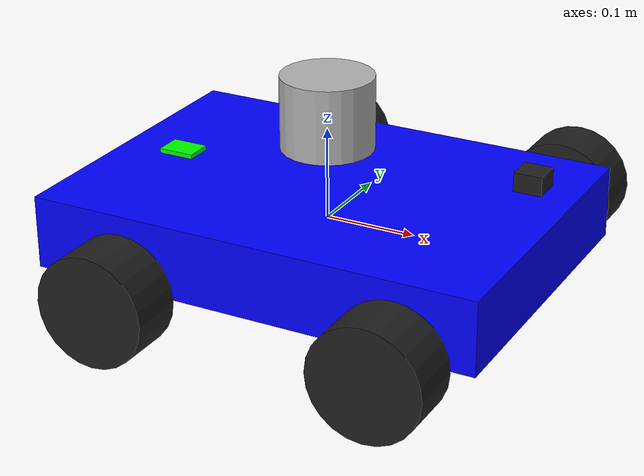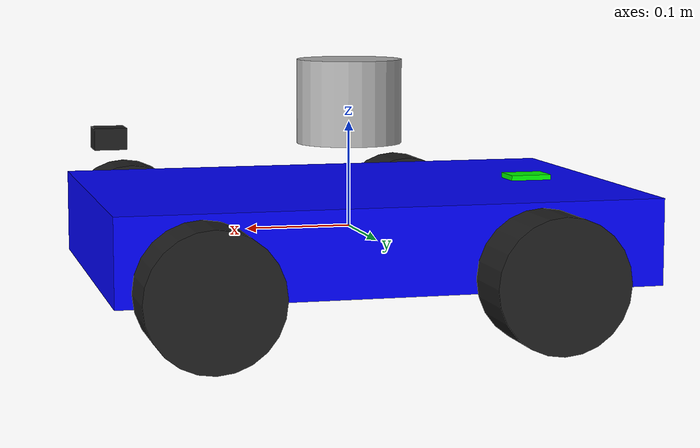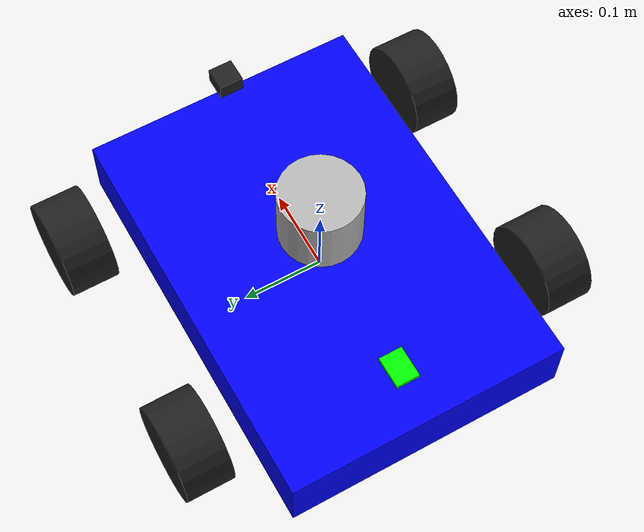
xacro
<?xml version="1.0"?>
<robot name="racecar" xmlns:xacro="http://www.ros.org/wiki/xacro">

  <!-- 拼接传感器定义-->
  <xacro:include filename="sensors.xacro"/>

  <!--  底盘质量  -->
  <xacro:property name="base_mass" value="2.0" />
  <!--  底盘惯性  -->
  <xacro:property name="base_inertia_ixx" value="0.05" />
  <xacro:property name="base_inertia_iyy" value="0.05" />
  <xacro:property name="base_inertia_izz" value="0.02" />
  <!--  车身尺寸  -->
  <xacro:property name="chassis_length" value="0.5" />
  <xacro:property name="chassis_width" value="0.35" />
  <xacro:property name="chassis_height" value="0.08" />

  <!-- 轮子半径 -->
  <xacro:property name="wheel_radius" value="0.06" />
  <!-- 轮子长度 -->
  <xacro:property name="wheel_length" value="0.06" />
  <!-- 轮子质量 -->
  <xacro:property name="wheel_mass" value="0.1" />
  <!-- 轮子间距 -->
  <xacro:property name="wheel_separation" value="0.48" />
  <!-- 轴距 -->
  <xacro:property name="wheelbase" value="0.30" />

  <!-- 轮轴位置 -->
  <xacro:property name="rear_axle_x" value="-0.12" />
  <xacro:property name="front_axle_x" value="0.18" />

  <!-- 底盘 link -->
  <link name="base_link">
    <!-- 物理属性 -->
    <inertial>
      <mass value="${base_mass}" />
      <inertia ixx="${base_inertia_ixx}" ixy="0" ixz="0"
               iyy="${base_inertia_iyy}" iyz="0"
               izz="${base_inertia_izz}" />
    </inertial>
    <!-- 车子外观 -->
    <visual>
      <geometry>
        <box size="${chassis_length} ${chassis_width} ${chassis_height}" />
      </geometry>
      <material name="blue">
        <color rgba="0 0 1 1" />
      </material>
    </visual>
    <!-- 车子碰撞体 -->
    <collision>
      <geometry>
        <box size="${chassis_length} ${chassis_width} ${chassis_height}" />
      </geometry>
    </collision>
  </link>

  <!-- 车轮宏,用来批量创建轮子（prefix车轮名字，x y轮子位置） -->
  <xacro:macro name="wheel_link" params="prefix x y">
    <link name="${prefix}_wheel_link">
      <inertial>
        <mass value="${wheel_mass}"/>
        <inertia ixx="0.001" ixy="0" ixz="0" iyy="0.001" iyz="0" izz="0.001"/>
      </inertial>
      <visual>
        <geometry>
          <cylinder length="${wheel_length}" radius="${wheel_radius}"/>
        </geometry>
        <material name="black"/>
      </visual>
      <collision>
        <geometry>
          <cylinder length="${wheel_length}" radius="${wheel_radius}"/>
        </geometry>
      </collision>
    </link>
  </xacro:macro>

  <!-- 后轮（驱动轮）-->
  <xacro:wheel_link prefix="left_rear" x="${rear_axle_x}" y="${wheel_separation/2}"/>
  <xacro:wheel_link prefix="right_rear" x="${rear_axle_x}" y="${-wheel_separation/2}"/>

  <!-- 后轮关节 -->
  <joint name="left_rear_wheel_joint" type="continuous">
    <origin xyz="${rear_axle_x} ${wheel_separation/2} -0.02" rpy="-1.5708 0 0"/>
    <parent link="base_link"/>
    <child link="left_rear_wheel_link"/>
    <!-- 轮子绕z轴旋转（joint坐标系z轴平行于地面）-->
    <axis xyz="0 0 1"/>
  </joint>
  <joint name="right_rear_wheel_joint" type="continuous">
    <origin xyz="${rear_axle_x} ${-wheel_separation/2} -0.02" rpy="-1.5708 0 0"/>
    <parent link="base_link"/>
    <child link="right_rear_wheel_link"/>
    <axis xyz="0 0 1"/>
  </joint>

  <!-- 前轮（转向轮） -->
  <xacro:wheel_link prefix="left_front" x="${front_axle_x}" y="${wheel_separation/2}"/>
  <xacro:wheel_link prefix="right_front" x="${front_axle_x}" y="${-wheel_separation/2}"/>

  <!-- 左前转向节 link -->
  <link name="left_front_steer_link">
    <inertial>
      <mass value="0.05" />
      <inertia ixx="0.0001" ixy="0" ixz="0" iyy="0.0001" iyz="0" izz="0.0001" />
    </inertial>
    <visual>
      <geometry>
       <box size="0.02 0.02 0.04" />
      </geometry>
      <material name="grey">
        <color rgba="0.5 0.5 0.5 1" />
      </material>
    </visual>
    <collision>
      <geometry>
        <box size="0.02 0.02 0.04" />
      </geometry>
    </collision>
  </link>

  <!-- 转向架关节-->
  <joint name="left_front_steer_joint" type="revolute">
    <parent link="base_link"/>
    <child link="left_front_steer_link"/>
    <origin xyz="${front_axle_x} ${wheel_separation/2} 0" rpy="0 0 0"/>
    <axis xyz="0 0 1"/>
    <!-- 转向角限制 -->
    <limit lower="-0.6" upper="0.6" effort="0.5" velocity="1.0"/>
  </joint>

  <!-- 左前轮关节（安装在转向节上） -->
  <joint name="left_front_wheel_joint" type="continuous">
    <parent link="left_front_steer_link"/>
    <child link="left_front_wheel_link"/>
    <origin xyz="0 0 -0.02" rpy="-1.5708 0 0"/>
    <axis xyz="0 0 1"/>
  </joint>

  <link name="right_front_steer_link">
    <inertial>
      <mass value="0.05" />
      <inertia ixx="0.0001" ixy="0" ixz="0" iyy="0.0001" iyz="0" izz="0.0001" />
    </inertial>
    <visual>
      <geometry><box size="0.02 0.02 0.04" /></geometry>
      <material name="grey"><color rgba="0.5 0.5 0.5 1" /></material>
    </visual>
    <collision>
      <geometry><box size="0.02 0.02 0.04" /></geometry>
    </collision>
  </link>

  <joint name="right_front_steer_joint" type="revolute">
    <parent link="base_link"/>
    <child link="right_front_steer_link"/>
    <origin xyz="${front_axle_x} ${-wheel_separation/2} 0" rpy="0 0 0"/>
    <axis xyz="0 0 1"/>
    <limit lower="-0.6" upper="0.6" effort="0.5" velocity="1.0"/>
  </joint>

  <!-- 右前轮（安装在转向节上） -->
  <joint name="right_front_wheel_joint" type="continuous">
    <parent link="right_front_steer_link"/>
    <child link="right_front_wheel_link"/>
    <origin xyz="0 0 -0.02" rpy="-1.5708 0 0"/>
    <axis xyz="0 0 1"/>
  </joint>

  <!-- 传感器  -->
  <xacro:velodyne_vlp16 parent="base_link">
    <origin xyz="0 0 0.12" rpy="0 0 0" />
  </xacro:velodyne_vlp16>
  <xacro:usb_camera parent="base_link">
    <origin xyz="0.23 0 0.09" rpy="0 0 0" />
  </xacro:usb_camera>
  <xacro:imu_sensor parent="base_link">
    <origin xyz="0 0 0.02" rpy="0 0 0" />
  </xacro:imu_sensor>
  <xacro:gps_sensor parent="base_link">
    <origin xyz="-0.18 0 0.04" rpy="0 0 0" />
  </xacro:gps_sensor>
  <xacro:magnetometer parent="base_link">
    <origin xyz="0.15 0.1 0.02" rpy="0 0 0" />
  </xacro:magnetometer>

  <!--  Gazebo 阿克曼转向插件 -->
  <gazebo>
    <plugin filename="gz-sim-ackermann-steering-system" name="gz::sim::systems::AckermannSteering">
      <left_joint>left_rear_wheel_joint</left_joint>
      <right_joint>right_rear_wheel_joint</right_joint>
      <left_steering_joint>left_front_steer_joint</left_steering_joint>
      <right_steering_joint>right_front_steer_joint</right_steering_joint>
      <wheel_base>${wheelbase}</wheel_base>
      <wheel_separation>${wheel_separation}</wheel_separation>
      <wheel_radius>${wheel_radius}</wheel_radius>
      <steering_limit>0.6</steering_limit>
      <max_velocity>3.0</max_velocity>
      <min_velocity>-3.0</min_velocity>
    </plugin>
  </gazebo>

  <!-- gazebo 关节状态发布插件 -->
  <gazebo>
    <plugin filename="gz-sim-joint-state-publisher-system"
          name="gz::sim::systems::JointStatePublisher">
    </plugin>
  </gazebo>

</robot>

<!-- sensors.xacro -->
<robot xmlns:xacro="http://www.ros.org/wiki/xacro">

  <!--  激光雷达的刚体  -->
  <xacro:macro name="velodyne_vlp16" params="parent *origin">
    <link name="velodyne_link">
      <inertial>
        <mass value="0.5" />
        <!--link都需要定义惯性张量，不然gazebo无法计算-->
        <inertia ixx="0.001" ixy="0" ixz="0" iyy="0.001" iyz="0" izz="0.001" />
      </inertial>
      <visual>
        <geometry>
          <cylinder radius="0.05" length="0.08" />
        </geometry>
        <material name="silver">
          <color rgba="0.7 0.7 0.7 1" />
        </material>
      </visual>
      <!-- 无碰撞盒：传感器 link 不需要碰撞，避免雷达扫到自身 -->
    </link>

    <joint name="velodyne_joint" type="fixed">
      <xacro:insert_block name="origin" />
      <parent link="${parent}" />
      <child link="velodyne_link" />
    </joint>

    <!--  Gazebo 激光雷达插件 -->
    <gazebo reference="velodyne_link">
      <sensor name="laser" type="gpu_lidar">
        <!--话题名字-->
        <topic>scan</topic>
        <update_rate>20</update_rate>
        <lidar>
          <scan>
            <!--水平扫描-->
            <horizontal>
              <!--一圈采样360个点-->
              <samples>360</samples>
              <resolution>1</resolution>
              <min_angle>-3.14159</min_angle>
              <max_angle>3.14159</max_angle>
            </horizontal>
            <!-- 垂直扫描 -->
            <vertical>
              <samples>16</samples>
              <resolution>1</resolution>
              <min_angle>-0.2618</min_angle>
              <max_angle>0.2618</max_angle>
            </vertical>
          </scan>
          <!-- 激光雷达测距范围 -->
          <range>
            <min>0.1</min>
            <max>30.0</max>
            <resolution>0.01</resolution>
          </range>
        </lidar>
        <always_on>1</always_on>
        <visualize>true</visualize>
      </sensor>
    </gazebo>
  </xacro:macro>

  <!-- USB 相机 -->
  <xacro:macro name="usb_camera" params="parent *origin">
    <!-- 相机刚体 -->
    <link name="camera_link">
      <inertial>
        <mass value="0.05" />
        <inertia ixx="0.0001" ixy="0" ixz="0" iyy="0.0001" iyz="0" izz="0.0001" />
      </inertial>
      <visual>
        <geometry>
          <box size="0.03 0.03 0.02" />
        </geometry>
        <material name="black" />
      </visual>
    </link>

    <joint name="camera_joint" type="fixed">
      <xacro:insert_block name="origin" />
      <parent link="${parent}" />
      <child link="camera_link" />
    </joint>
    <!-- Gazebo 相机插件 -->
    <gazebo reference="camera_link">
      <sensor name="camera" type="camera">
        <topic>camera/image_raw</topic>
        <update_rate>30</update_rate>
        <camera>
          <!-- 相机视角范围 -->
          <horizontal_fov>1.0472</horizontal_fov>
          <image>
            <width>640</width>
            <height>480</height>
            <format>R8G8B8</format>
          </image>
          <!-- 相机距离范围 -->
          <clip>
            <near>0.05</near>
            <far>100</far>
          </clip>
        </camera>
        <always_on>1</always_on>
        <visualize>true</visualize>
      </sensor>
    </gazebo>
  </xacro:macro>

  <!-- IMU  -->
    <xacro:macro name="imu_sensor" params="parent *origin">
    <link name="imu_link">
      <inertial>
        <mass value="0.02" />
        <inertia ixx="0.00001" ixy="0" ixz="0" iyy="0.00001" iyz="0" izz="0.00001" />
      </inertial>
      <visual>
        <geometry>
          <box size="0.02 0.02 0.01" />
        </geometry>
        <material name="red">
          <color rgba="1 0 0 1" />
        </material>
      </visual>
    </link>

    <joint name="imu_joint" type="fixed">
      <xacro:insert_block name="origin" />
      <parent link="${parent}" />
      <child link="imu_link" />
    </joint>

    <gazebo reference="imu_link">
      <sensor name="imu" type="imu">
        <topic>imu/data_raw</topic>
        <update_rate>100</update_rate>
        <always_on>1</always_on>
        <visualize>true</visualize>
        <imu>
          <angular_velocity>
            <x>
              <noise type="gaussian">
                <mean>0.0</mean>
                <stddev>0.2</stddev>
              </noise>
            </x>
            <y>
              <noise type="gaussian">
                <mean>0.0</mean>
                <stddev>0.2</stddev>
              </noise>
            </y>
            <z>
              <noise type="gaussian">
                <mean>0.0</mean>
                <stddev>0.2</stddev>
              </noise>
            </z>
          </angular_velocity>
          <linear_acceleration>
            <x>
              <noise type="gaussian">
                <mean>0.0</mean>
                <stddev>0.01</stddev>
              </noise>
            </x>
            <y>
              <noise type="gaussian">
                <mean>0.0</mean>
                <stddev>0.01</stddev>
              </noise>
            </y>
            <z>
              <noise type="gaussian">
                <mean>0.0</mean>
                <stddev>0.01</stddev>
              </noise>
            </z>
          </linear_acceleration>
        </imu>
      </sensor>
    </gazebo>
  </xacro:macro>

  <!-- GPS -->
  <xacro:macro name="gps_sensor" params="parent *origin">
    <link name="gps_link">
      <inertial>
        <mass value="0.03" />
        <inertia ixx="0.00001" ixy="0" ixz="0" iyy="0.00001" iyz="0" izz="0.00001" />
      </inertial>
      <visual>
        <geometry>
          <box size="0.04 0.03 0.01" />
        </geometry>
        <material name="green">
          <color rgba="0 1 0 1" />
        </material>
      </visual>
    </link>

    <joint name="gps_joint" type="fixed">
      <xacro:insert_block name="origin" />
      <parent link="${parent}" />
      <child link="gps_link" />
    </joint>

    <gazebo reference="gps_link">
      <sensor name="gps" type="gps">
        <topic>gps/fix</topic>
        <update_rate>20</update_rate>
        <always_on>1</always_on>
        <visualize>true</visualize>
        <gps>
          <position_sensing>
            <!-- 加入高斯噪声，模拟真实世界 -->
            <horizontal_noise type="gaussian" mean="0" stddev="0.5" />
            <vertical_noise type="gaussian" mean="0" stddev="0.5" />
          </position_sensing>
        </gps>
      </sensor>
    </gazebo>
  </xacro:macro>

  <!-- 磁力计 -->
  <xacro:macro name="magnetometer" params="parent *origin">
    <link name="magnetometer_link">
      <inertial>
        <mass value="0.01" />
        <inertia ixx="0.000001" ixy="0" ixz="0" iyy="0.000001" iyz="0" izz="0.000001" />
      </inertial>
      <visual>
        <geometry>
          <box size="0.015 0.015 0.005" />
        </geometry>
        <material name="purple">
          <color rgba="0.5 0 0.5 1" />
        </material>
      </visual>
    </link>

    <joint name="magnetometer_joint" type="fixed">
      <xacro:insert_block name="origin" />
      <parent link="${parent}" />
      <child link="magnetometer_link" />
    </joint>

    <gazebo reference="magnetometer_link">
      <sensor name="magnetometer" type="magnetometer">
        <topic>magnetometer</topic>
        <update_rate>20</update_rate>
        <always_on>1</always_on>
        <visualize>true</visualize>
        <magnetometer>
          <x><noise type="gaussian" mean="0" stddev="0.001" /></x>
          <y><noise type="gaussian" mean="0" stddev="0.001" /></y>
          <z><noise type="gaussian" mean="0" stddev="0.001" /></z>
        </magnetometer>
      </sensor>
    </gazebo>
  </xacro:macro>

</robot>
